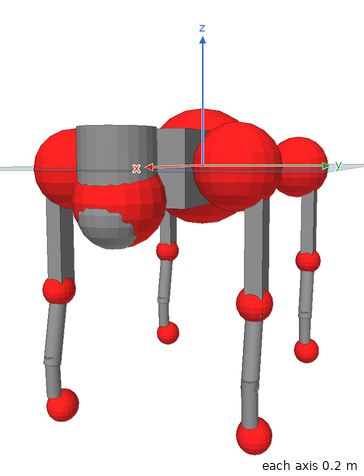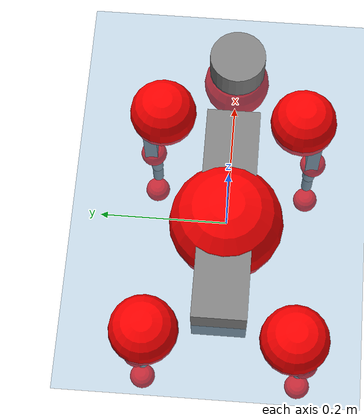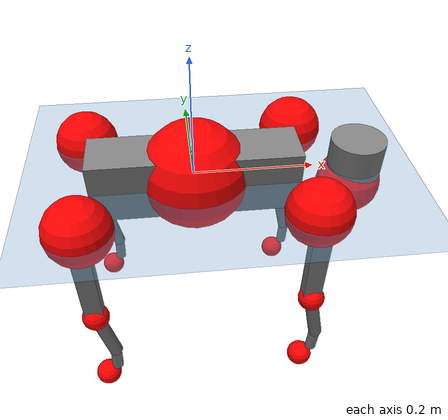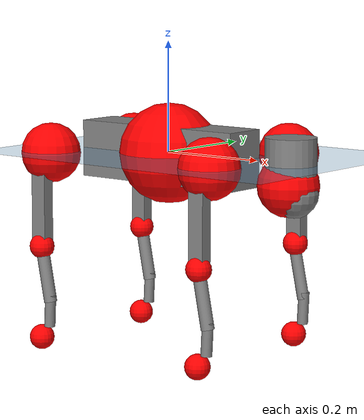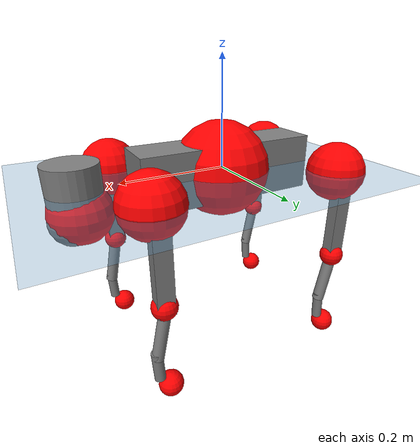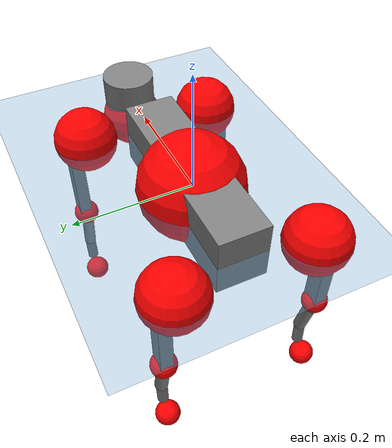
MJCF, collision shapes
<mujoco model="go2">
  <compiler angle="radian" assetdir="assets" balanceinertia="true" inertiafromgeom="false"/>

  <option timestep="0.005" density="1.2" viscosity="2e-05"/>

  <size nkey="1"/>

  <visual>
    <quality shadowsize="8192"/>
    <map shadowclip="0.5"/>
  </visual>

  <default>
    <default class="/">
      <geom contype="0" conaffinity="0" group="1" solref="-1000 -80"/>
      <site size="0.01 0.005 0.005" group="5"/>
      <general forcelimited="true" biastype="affine" gainprm="20" biasprm="0 -20 -0.5"/>
      <default class="go2">
        <joint armature="0.01" damping="0.01" frictionloss="0.2"/>
        <geom condim="1" margin="0.001"/>
        <default class="visual">
          <geom type="mesh" group="2"/>
        </default>
        <default class="collision">
          <geom group="3"/>
          <default class="foot">
            <geom size="0.022 0 0" condim="6" priority="1" friction="0.8 0.02 0.01" solimp="0.015 1 0.022"/>
          </default>
        </default>
        <default class="reward_collision_sphere">
          <geom group="5" rgba="1 0 0 1"/>
        </default>
      </default>
    </default>
  </default>

  <asset>
    <texture type="skybox" colorspace="auto" name="//unnamed_texture_0" builtin="gradient" rgb1="0.95 0.95 0.95" rgb2="0.95 0.95 0.95" width="100" height="600"/>
    <texture type="2d" colorspace="auto" name="texplane" builtin="checker" rgb1="0.345 0.575 0.748" rgb2="0.345 0.575 0.748" markrgb="1 1 1" width="512" height="512"/>
    <material name="MatPlane" class="/" texture="texplane" texuniform="true" texrepeat="2 2" specular="0.9"/>
    <material name="metal" class="/" rgba="0.9 0.95 0.95 1"/>
    <material name="black" class="/" rgba="0 0 0 1"/>
    <material name="white" class="/"/>
    <material name="gray" class="/" rgba="0.671705 0.692426 0.77427 1"/>
    <mesh name="base_0" class="/" file="base_0.obj"/>
    <mesh name="base_1" class="/" file="base_1.obj"/>
    <mesh name="base_2" class="/" file="base_2.obj"/>
    <mesh name="base_3" class="/" file="base_3.obj"/>
    <mesh name="base_4" class="/" file="base_4.obj"/>
    <mesh name="hip_0" class="/" file="hip_0.obj"/>
    <mesh name="hip_1" class="/" file="hip_1.obj"/>
    <mesh name="thigh_0" class="/" file="thigh_0.obj"/>
    <mesh name="thigh_1" class="/" file="thigh_1.obj"/>
    <mesh name="thigh_mirror_0" class="/" file="thigh_mirror_0.obj"/>
    <mesh name="thigh_mirror_1" class="/" file="thigh_mirror_1.obj"/>
    <mesh name="calf_0" class="/" file="calf_0.obj"/>
    <mesh name="calf_1" class="/" file="calf_1.obj"/>
    <mesh name="calf_mirror_0" class="/" file="calf_mirror_0.obj"/>
    <mesh name="calf_mirror_1" class="/" file="calf_mirror_1.obj"/>
    <mesh name="foot" class="/" file="foot.obj"/>
  </asset>

  <worldbody>
    <geom name="floor" class="/" size="100 100 0.125" type="plane" group="0" material="MatPlane"/>
    <light name="toplight_shadow" class="/" pos="0 0 5" dir="0.0990148 0.0990148 -0.990148" type="directional" ambient="0.04 0.04 0.04" diffuse="0.55 0.55 0.55" specular="0.12 0.12 0.12"/>
    <light name="toplight_fill" class="/" pos="0 0 5" dir="0.0990148 0.0990148 -0.990148" type="directional" castshadow="false" ambient="0.04 0.04 0.04" diffuse="0.3 0.3 0.3" specular="0.08 0.08 0.08"/>
    <body name="trunk" childclass="go2" pos="0.00181269 0.000693816 -0.0019634" quat="0.999999 -0.000491429 -0.000131509 -0.00106492">
      <inertial pos="0.0177166 0.00194365 -0.00334903" quat="0.00208299 0.712571 0.00104233 0.701596" mass="5.19513" diaginertia="0.083072 0.0928269 0.0080409"/>
      <joint name="//unnamed_joint_0" type="free" armature="0" damping="0" frictionloss="0"/>
      <geom name="//unnamed_geom_1" class="visual" material="black" mesh="base_0"/>
      <geom name="//unnamed_geom_2" class="visual" material="black" mesh="base_1"/>
      <geom name="//unnamed_geom_3" class="visual" material="black" mesh="base_2"/>
      <geom name="//unnamed_geom_4" class="visual" material="white" mesh="base_3"/>
      <geom name="//unnamed_geom_5" class="visual" material="gray" mesh="base_4"/>
      <geom name="trunk_1" class="collision" size="0.171192 0.0425478 0.0518765" type="box"/>
      <geom name="trunk_2" class="collision" size="0.0455057 0.0409551" pos="0.2701 0 0.00796212" type="cylinder"/>
      <geom name="trunk_3" class="collision" size="0.0427753" pos="0.277682 0 -0.0477727"/>
      <geom name="//unnamed_geom_9" class="reward_collision_sphere" size="0.0910113"/>
      <geom name="//unnamed_geom_10" class="reward_collision_sphere" size="0.0546068" pos="0.265362 0 -0.0358295"/>
      <site name="imu" pos="-0.0199821 0.0118135 0.0461476" size="0.00910113"/>
      <camera name="track" pos="0 -1.97282 0" quat="0.707107 0.707107 0 0" mode="trackcom"/>
      <camera name="ego_camera" pos="0.295689 0 0.0358295" quat="-0.5 -0.5 0.5 0.5"/>
      <body name="FL_hip" pos="0.182391 0.0469962 0.0029227" quat="1 0.000283617 -0.000690964 -0.000269598">
        <inertial pos="-0.00532528 -0.00061276 0.00115565" quat="0.499383 0.501621 0.504182 0.494766" mass="0.495732" diaginertia="0.000686833 0.000568793 0.000153928"/>
        <joint name="FL_hip_joint" pos="0 0 0" axis="0.999966 -0.00140494 -0.00815494" range="-1.00872 1.0711" armature="0.00907229" damping="0.0193497" frictionloss="0.179821"/>
        <geom name="//unnamed_geom_11" class="visual" material="metal" mesh="hip_0"/>
        <geom name="//unnamed_geom_12" class="visual" material="gray" mesh="hip_1"/>
        <geom name="//unnamed_geom_13" class="collision" size="0.0418652 0.0182023" pos="0 0.0789126 0" quat="0.707107 0.707107 0 0" type="cylinder"/>
        <geom name="//unnamed_geom_14" class="reward_collision_sphere" size="0.0546068" pos="0 0.0690485 0"/>
        <body name="FL_thigh" pos="0.000861043 0.0948557 0.00308546" quat="0.999999 6.23762e-05 0.00127339 3.38492e-05">
          <inertial pos="-0.0011413 -0.02451 -0.0283922" quat="0.82967 0.084423 -0.0194947 0.55149" mass="0.843521" diaginertia="0.00450316 0.00521451 0.000276816"/>
          <joint name="FL_thigh_joint" pos="0 0 0" axis="0.00157936 0.999999 -5.61129e-05" range="-1.5277 3.49244" armature="0.00847718" damping="0.0150477" frictionloss="0.173201"/>
          <geom name="//unnamed_geom_15" class="visual" material="metal" mesh="thigh_0"/>
          <geom name="//unnamed_geom_16" class="visual" material="gray" mesh="thigh_1"/>
          <geom name="//unnamed_geom_17" class="collision" size="0.0969271 0.0111489 0.0154719" pos="0 0 -0.0847966" quat="0.707107 0 0.707107 0" type="box"/>
          <body name="FL_calf" pos="-0.000768983 -0.00254351 -0.170161" quat="0.999999 0.00127401 -0.000333499 -5.34593e-05">
            <inertial pos="0.00325555 -0.000749995 -0.109268" quat="0.715159 0.000326168 -0.00582341 0.698938" mass="0.18163" diaginertia="0.00112582 0.00144191 1.74493e-05"/>
            <joint name="FL_calf_joint" pos="0 0 0" axis="0.0184838 0.999828 -0.00157313" stiffness="0.0134231" range="-2.77122 -0.85146" armature="0.00999695" damping="0" frictionloss="0.202807"/>
            <geom name="//unnamed_geom_18" class="visual" material="gray" mesh="calf_0"/>
            <geom name="//unnamed_geom_19" class="visual" material="black" mesh="calf_1"/>
            <geom name="FL_calf0" class="collision" size="0.0109214 0.0546068" pos="0.00758176 0 -0.0477727" quat="0.994493 0 -0.104807 0" type="cylinder"/>
            <geom name="//unnamed_geom_21" class="collision" size="0.0100112 0.0295787" pos="0.0189544 0 -0.117839" quat="0.999688 0 0.0249974 0" type="cylinder"/>
            <geom name="//unnamed_geom_22" class="visual" pos="0 0 -0.169593" quat="1 0 0 0" material="black" mesh="foot"/>
            <geom name="FL_foot" class="foot" size="0.017591" pos="-0.00189544 0 -0.169593"/>
            <geom name="//unnamed_geom_24" class="reward_collision_sphere" size="0.0227528"/>
            <geom name="//unnamed_geom_25" class="reward_collision_sphere" size="0.0227528" pos="-0.00189544 0 -0.169593"/>
            <site name="FL_foot" class="foot" pos="-0.00189544 0 -0.169593" size="0.00910113"/>
          </body>
        </body>
      </body>
      <body name="FR_hip" pos="0.182982 -0.0457024 -0.00143887" quat="0.999999 0.000165526 0.000408454 -0.00120591">
        <inertial pos="-0.00254839 -0.00448478 -8.67576e-06" quat="0.503997 0.504233 0.505263 0.486256" mass="0.506635" diaginertia="0.000632218 0.000539024 0.000143885"/>
        <joint name="FR_hip_joint" pos="0 0 0" axis="0.9999 -0.00594856 0.0128363" range="-1.03225 1.04849" armature="0.0092477" damping="0.00629962" frictionloss="0.157563"/>
        <geom name="//unnamed_geom_26" class="visual" pos="0 1.6569e-09 7.10681e-08" quat="4.63268e-05 1 0 0" material="metal" mesh="hip_0"/>
        <geom name="//unnamed_geom_27" class="visual" pos="0 2.68604e-09 -1.75779e-07" quat="4.63268e-05 1 0 0" material="gray" mesh="hip_1"/>
        <geom name="//unnamed_geom_28" class="collision" size="0.0418652 0.0182023" pos="0 -0.0789126 0" quat="0.707107 0.707107 0 0" type="cylinder"/>
        <geom name="//unnamed_geom_29" class="reward_collision_sphere" size="0.0546068" pos="0 -0.0690485 0"/>
        <body name="FR_thigh" pos="0.000171525 -0.0959688 0.00160434" quat="1 0.000256089 0.000188975 4.63605e-05">
          <inertial pos="-0.000805261 0.0193168 -0.0250642" quat="0.54885 -0.0282137 0.0745896 0.832108" mass="0.874322" diaginertia="0.00448472 0.00527036 0.000283427"/>
          <joint name="FR_thigh_joint" pos="0 0 0" axis="-0.00465418 -0.999989 -0.000843251" range="-3.46983 1.62418" armature="0.00911494" damping="0.00936281" frictionloss="0.198337"/>
          <geom name="//unnamed_geom_30" class="visual" material="metal" mesh="thigh_mirror_0"/>
          <geom name="//unnamed_geom_31" class="visual" material="gray" mesh="thigh_mirror_1"/>
          <geom name="//unnamed_geom_32" class="collision" size="0.0969271 0.0111489 0.0154719" pos="0 0 -0.0847966" quat="0.707107 0 0.707107 0" type="box"/>
          <body name="FR_calf" pos="0.00135503 -0.00300304 -0.170579" quat="1 1.19799e-05 -1.27195e-05 5.87543e-06">
            <inertial pos="0.00587878 7.01177e-05 -0.112278" quat="0.694811 -0.0010153 0.00062363 0.719192" mass="0.182882" diaginertia="0.00114451 0.00136823 1.64506e-05"/>
            <joint name="FR_calf_joint" pos="0 0 0" axis="0.00450348 -0.99993 -0.0109156" range="0.824426 2.77723" armature="0.0087559" damping="0.0259539" frictionloss="0.168861"/>
            <geom name="//unnamed_geom_33" class="visual" material="gray" mesh="calf_mirror_0"/>
            <geom name="//unnamed_geom_34" class="visual" material="black" mesh="calf_mirror_1"/>
            <geom name="FR_calf0" class="collision" size="0.0118315 0.0546068" pos="0.0094772 0 -0.0477727" quat="0.995004 0 -0.0998334 0" type="cylinder"/>
            <geom name="//unnamed_geom_36" class="collision" size="0.0100112 0.0295787" pos="0.0189544 0 -0.117839" quat="0.999688 0 0.0249974 0" type="cylinder"/>
            <geom name="//unnamed_geom_37" class="visual" pos="0 0 -0.169593" quat="1 0 0 0" material="black" mesh="foot"/>
            <geom name="FR_foot" class="foot" size="0.0208313" pos="-0.00189544 0 -0.169593"/>
            <geom name="//unnamed_geom_39" class="reward_collision_sphere" size="0.0227528"/>
            <geom name="//unnamed_geom_40" class="reward_collision_sphere" size="0.0227528" pos="-0.00189544 0 -0.169593"/>
            <site name="FR_foot" class="foot" pos="-0.00189544 0 -0.169593" size="0.00910113"/>
          </body>
        </body>
      </body>
      <body name="RL_hip" pos="-0.182624 0.0455308 -0.00311026" quat="1 -7.1414e-05 -2.03042e-05 9.15101e-05">
        <inertial pos="0.00612849 0.00434294 -0.00269435" quat="0.499542 0.503814 0.49815 0.498473" mass="0.522133" diaginertia="0.000663688 0.000550945 0.000157258"/>
        <joint name="RL_hip_joint" pos="0 0 0" axis="-0.999861 -0.016245 0.00384421" stiffness="0.0126116" range="-1.02781 0.993838" armature="0.00795072" damping="0.00148514" frictionloss="0.205276"/>
        <geom name="//unnamed_geom_41" class="visual" pos="-1.31987e-09 0 -2.58725e-07" quat="4.63268e-05 0 1 0" material="metal" mesh="hip_0"/>
        <geom name="//unnamed_geom_42" class="visual" pos="-2.13967e-09 0 -2.29452e-07" quat="4.63268e-05 0 1 0" material="gray" mesh="hip_1"/>
        <geom name="//unnamed_geom_43" class="collision" size="0.0418652 0.0182023" pos="0 0.0789126 0" quat="0.707107 0.707107 0 0" type="cylinder"/>
        <geom name="//unnamed_geom_44" class="reward_collision_sphere" size="0.0546068" pos="0 0.0690485 0"/>
        <body name="RL_thigh" pos="0.000407495 0.0908534 0.00201904" quat="1 -0.000475177 -6.6832e-05 -8.14859e-05">
          <inertial pos="-0.00336637 -0.0217009 -0.0268507" quat="0.83232 0.0844823 -0.0195907 0.547469" mass="0.893079" diaginertia="0.00454392 0.00539958 0.000291157"/>
          <joint name="RL_thigh_joint" pos="0 0 0" axis="0.00948345 0.999874 0.012693" stiffness="0.0121729" range="-0.531811 4.53973" armature="0.0103227" damping="0" frictionloss="0.183477"/>
          <geom name="//unnamed_geom_45" class="visual" material="metal" mesh="thigh_0"/>
          <geom name="//unnamed_geom_46" class="visual" material="gray" mesh="thigh_1"/>
          <geom name="//unnamed_geom_47" class="collision" size="0.0969271 0.0111489 0.0154719" pos="0 0 -0.0847966" quat="0.707107 0 0.707107 0" type="box"/>
          <body name="RL_calf" pos="0.000357654 -1.26645e-05 -0.171929" quat="1 0.000106969 -1.88636e-05 -0.000102432">
            <inertial pos="0.0049306 0.00151393 -0.11293" quat="0.708939 0.0126151 -0.00567932 0.705134" mass="0.183515" diaginertia="0.00111643 0.00137222 1.67574e-05"/>
            <joint name="RL_calf_joint" pos="0 0 0" axis="-0.00219642 0.999997 0.000581661" range="-2.72014 -0.799442" armature="0.0101184" damping="0" frictionloss="0.20123"/>
            <geom name="//unnamed_geom_48" class="visual" material="gray" mesh="calf_0"/>
            <geom name="//unnamed_geom_49" class="visual" material="black" mesh="calf_1"/>
            <geom name="RL_calf0" class="collision" size="0.0118315 0.0546068" pos="0.0094772 0 -0.0477727" quat="0.995004 0 -0.0998334 0" type="cylinder"/>
            <geom name="//unnamed_geom_51" class="collision" size="0.0100112 0.0295787" pos="0.0189544 0 -0.117839" quat="0.999688 0 0.0249974 0" type="cylinder"/>
            <geom name="//unnamed_geom_52" class="visual" pos="0 0 -0.169593" quat="1 0 0 0" material="black" mesh="foot"/>
            <geom name="RL_foot" class="foot" size="0.016386" pos="-0.00189544 0 -0.169593"/>
            <geom name="//unnamed_geom_54" class="reward_collision_sphere" size="0.0227528"/>
            <geom name="//unnamed_geom_55" class="reward_collision_sphere" size="0.0227528" pos="-0.00189544 0 -0.169593"/>
            <site name="RL_foot" class="foot" pos="-0.00189544 0 -0.169593" size="0.00910113"/>
          </body>
        </body>
      </body>
      <body name="RR_hip" pos="-0.182116 -0.0487272 -0.0026298" quat="1 -0.00063047 0.000528513 0.00022557">
        <inertial pos="0.00720608 0.00107724 -0.00243015" quat="0.498681 0.503188 0.486971 0.51086" mass="0.510766" diaginertia="0.000669968 0.000554605 0.000154883"/>
        <joint name="RR_hip_joint" pos="0 0 0" axis="-0.999947 -0.00878748 -0.00537252" stiffness="0.00967833" range="-1.0216 1.03035" armature="0.00814141" damping="0.00765421" frictionloss="0.17484"/>
        <geom name="//unnamed_geom_56" class="visual" pos="1.32121e-09 1.6569e-09 -3.29793e-07" quat="2.14617e-09 4.63268e-05 4.63268e-05 -1" material="metal" mesh="hip_0"/>
        <geom name="//unnamed_geom_57" class="visual" pos="2.13636e-09 2.68604e-09 -5.36738e-08" quat="2.14617e-09 4.63268e-05 4.63268e-05 -1" material="gray" mesh="hip_1"/>
        <geom name="//unnamed_geom_58" class="collision" size="0.0418652 0.0182023" pos="0 -0.0789126 0" quat="0.707107 0.707107 0 0" type="cylinder"/>
        <geom name="//unnamed_geom_59" class="reward_collision_sphere" size="0.0546068" pos="0 -0.0690485 0"/>
        <body name="RR_thigh" pos="0.000697445 -0.0944868 -0.00131173" quat="1 -0.000105717 -0.000134668 -3.27235e-06">
          <inertial pos="-0.00227142 0.0223968 -0.0260549" quat="0.553594 -0.0188829 0.0839181 0.828332" mass="0.838924" diaginertia="0.00459931 0.0056376 0.000280897"/>
          <joint name="RR_thigh_joint" pos="0 0 0" axis="-0.00191081 -0.999982 0.0056275" stiffness="0.00648903" range="-4.54521 0.576811" armature="0.00954724" damping="0.010322" frictionloss="0.175265"/>
          <geom name="//unnamed_geom_60" class="visual" material="metal" mesh="thigh_mirror_0"/>
          <geom name="//unnamed_geom_61" class="visual" material="gray" mesh="thigh_mirror_1"/>
          <geom name="//unnamed_geom_62" class="collision" size="0.0969271 0.0111489 0.0154719" pos="0 0 -0.0847966" quat="0.707107 0 0.707107 0" type="box"/>
          <body name="RR_calf" pos="0.000545519 -0.00213871 -0.168144" quat="1 7.94141e-05 -0.000232981 0.000247608">
            <inertial pos="0.00296667 -0.000449462 -0.113276" quat="0.703608 -0.00045699 -0.00949013 0.710525" mass="0.184177" diaginertia="0.00116029 0.00137644 1.76507e-05"/>
            <joint name="RR_calf_joint" pos="0 0 0" axis="-0.0150432 -0.999846 -0.00906223" stiffness="0.00256075" range="0.828664 2.71521" armature="0.00903488" damping="0.0236065" frictionloss="0.180737"/>
            <geom name="//unnamed_geom_63" class="visual" material="gray" mesh="calf_mirror_0"/>
            <geom name="//unnamed_geom_64" class="visual" material="black" mesh="calf_mirror_1"/>
            <geom name="RR_calf0" class="collision" size="0.0118315 0.0546068" pos="0.0094772 0 -0.0477727" quat="0.995004 0 -0.0998334 0" type="cylinder"/>
            <geom name="//unnamed_geom_66" class="collision" size="0.0100112 0.0295787" pos="0.0189544 0 -0.117839" quat="0.999688 0 0.0249974 0" type="cylinder"/>
            <geom name="//unnamed_geom_67" class="visual" pos="0 0 -0.169593" quat="1 0 0 0" material="black" mesh="foot"/>
            <geom name="RR_foot" class="foot" size="0.0194153" pos="-0.00189544 0 -0.169593"/>
            <geom name="//unnamed_geom_69" class="reward_collision_sphere" size="0.0227528"/>
            <geom name="//unnamed_geom_70" class="reward_collision_sphere" size="0.0227528" pos="-0.00189544 0 -0.169593"/>
            <site name="RR_foot" class="foot" pos="-0.00189544 0 -0.169593" size="0.00910113"/>
          </body>
        </body>
      </body>
    </body>
  </worldbody>

  <contact>
    <pair class="/" geom1="floor" geom2="FL_foot" name="//unnamed_contact_0"/>
    <pair class="/" geom1="floor" geom2="FR_foot" name="//unnamed_contact_1"/>
    <pair class="/" geom1="floor" geom2="RL_foot" name="//unnamed_contact_2"/>
    <pair class="/" geom1="floor" geom2="RR_foot" name="//unnamed_contact_3"/>
  </contact>

  <actuator>
    <general name="FL_hip" class="/" joint="FL_hip_joint" forcerange="-21.675 21.675" gainprm="19.4442" biasprm="0 -19.4442 -0.424834"/>
    <general name="FL_thigh" class="/" joint="FL_thigh_joint" forcerange="-19.7782 19.7782" gainprm="19.4442" biasprm="0 -19.4442 -0.424834"/>
    <general name="FL_calf" class="/" joint="FL_calf_joint" forcerange="-42.8266 42.8266" gainprm="19.4442" biasprm="0 -19.4442 -0.424834"/>
    <general name="FR_hip" class="/" joint="FR_hip_joint" forcerange="-21.4879 21.4879" gainprm="19.4442" biasprm="0 -19.4442 -0.424834"/>
    <general name="FR_thigh" class="/" joint="FR_thigh_joint" forcerange="-23.3658 23.3658" gainprm="19.4442" biasprm="0 -19.4442 -0.424834"/>
    <general name="FR_calf" class="/" joint="FR_calf_joint" forcerange="-40.3397 40.3397" gainprm="19.4442" biasprm="0 -19.4442 -0.424834"/>
    <general name="RL_hip" class="/" joint="RL_hip_joint" forcerange="-23.2663 23.2663" gainprm="19.4442" biasprm="0 -19.4442 -0.424834"/>
    <general name="RL_thigh" class="/" joint="RL_thigh_joint" forcerange="-20.0195 20.0195" gainprm="19.4442" biasprm="0 -19.4442 -0.424834"/>
    <general name="RL_calf" class="/" joint="RL_calf_joint" forcerange="-37.7354 37.7354" gainprm="19.4442" biasprm="0 -19.4442 -0.424834"/>
    <general name="RR_hip" class="/" joint="RR_hip_joint" forcerange="-19.3672 19.3672" gainprm="19.4442" biasprm="0 -19.4442 -0.424834"/>
    <general name="RR_thigh" class="/" joint="RR_thigh_joint" forcerange="-23.4813 23.4813" gainprm="19.4442" biasprm="0 -19.4442 -0.424834"/>
    <general name="RR_calf" class="/" joint="RR_calf_joint" forcerange="-40.0292 40.0292" gainprm="19.4442" biasprm="0 -19.4442 -0.424834"/>
  </actuator>

  <sensor>
    <gyro site="imu" name="imu_angular_velocity"/>
    <velocimeter site="imu" name="imu_linear_velocity"/>
    <framelinvel objtype="site" objname="FL_foot" name="FL_foot_global_linear_velocity"/>
    <framelinvel objtype="site" objname="FR_foot" name="FR_foot_global_linear_velocity"/>
    <framelinvel objtype="site" objname="RL_foot" name="RL_foot_global_linear_velocity"/>
    <framelinvel objtype="site" objname="RR_foot" name="RR_foot_global_linear_velocity"/>
  </sensor>

  <keyframe>
    <key name="home" qpos="0 0 0.325 1 0 0 0 0.1 0.8 -1.5 -0.1 -0.8 1.5 -0.1 0.8 -1.5 0.1 -0.8 1.5"/>
  </keyframe>
</mujoco>
